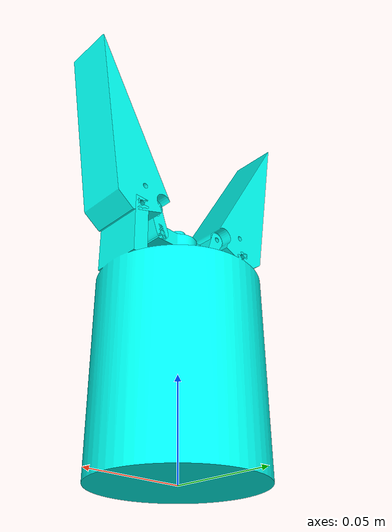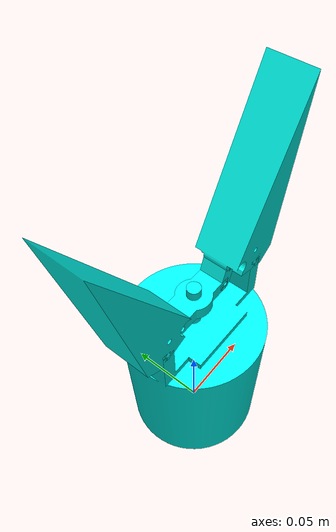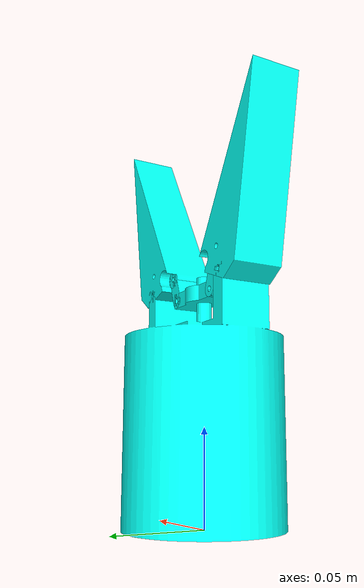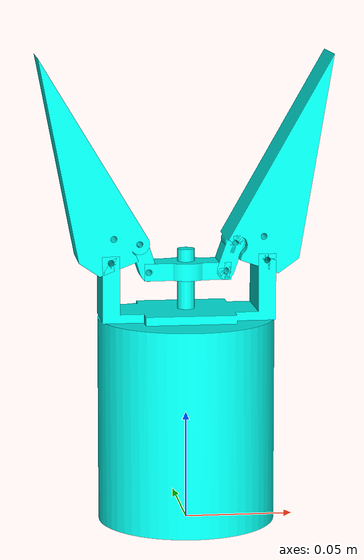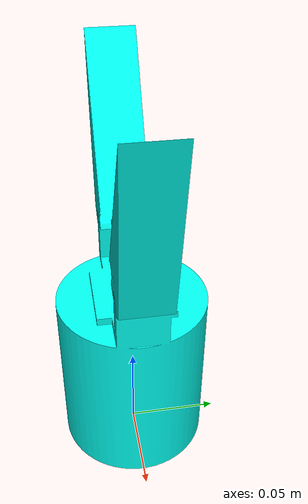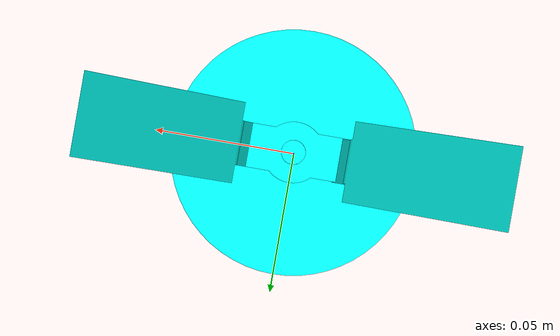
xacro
<?xml version="1.0" ?>
<robot name="urdfgripper" xmlns:xacro="http://www.ros.org/wiki/xacro">

<xacro:include filename="$(find urdfgripper_description)/urdf/materials.xacro" />
<xacro:include filename="$(find urdfgripper_description)/urdf/urdfgripper.trans" />
<xacro:include filename="$(find urdfgripper_description)/urdf/urdfgripper.gazebo" />

<link name="gripper_base_link">
  <inertial>
    <origin xyz="1.9099884677715165e-13 -8.588463814791657e-18 0.050480059207214864" rpy="0 0 0"/>
    <mass value="4.156467071923433"/>
    <inertia ixx="0.005332" iyy="0.005469" izz="0.003505" ixy="-0.0" iyz="-0.0" ixz="-0.0"/>
  </inertial>
  <visual>
    <origin xyz="0 0 0" rpy="0 0 0"/>
    <geometry>
      <mesh filename="package://urdfgripper_description/meshes/base_link.stl" scale="0.001 0.001 0.001"/>
    </geometry>
    <material name="cyan"/>
  </visual>
  <collision>
    <origin xyz="0 0 0" rpy="0 0 0"/>
    <geometry>
      <mesh filename="package://urdfgripper_description/meshes/base_link.stl" scale="0.001 0.001 0.001"/>
    </geometry>
  </collision>
</link>

<link name="clamp2_1">
  <inertial>
    <origin xyz="-0.0007710681342016981 0.01324999999999889 0.032208454343210485" rpy="0 0 0"/>
    <mass value="0.3695576413156298"/>
    <inertia ixx="0.000228" iyy="0.000227" izz="4.2e-05" ixy="0.0" iyz="0.0" ixz="2.1e-05"/>
  </inertial>
  <visual>
    <origin xyz="0.036 0.01325 -0.1238" rpy="0 0 0"/>
    <geometry>
      <mesh filename="package://urdfgripper_description/meshes/clamp2_1.stl" scale="0.001 0.001 0.001"/>
    </geometry>
    <material name="cyan"/>
  </visual>
  <collision>
    <origin xyz="0.036 0.01325 -0.1238" rpy="0 0 0"/>
    <geometry>
      <mesh filename="package://urdfgripper_description/meshes/clamp2_1.stl" scale="0.001 0.001 0.001"/>
    </geometry>
  </collision>
</link>

<link name="joint_gripper2_1">
  <inertial>
    <origin xyz="0.0014117786083714633 0.007249999999999621 -0.006855934747932696" rpy="0 0 0"/>
    <mass value="0.01686070551364095"/>
    <inertia ixx="1e-06" iyy="1e-06" izz="0.0" ixy="-0.0" iyz="-0.0" ixz="0.0"/>
  </inertial>
  <visual>
    <origin xyz="0.0175 0.0 -0.105" rpy="0 0 0"/>
    <geometry>
      <mesh filename="package://urdfgripper_description/meshes/joint_gripper2_1.stl" scale="0.001 0.001 0.001"/>
    </geometry>
    <material name="cyan"/>
  </visual>
  <collision>
    <origin xyz="0.0175 0.0 -0.105" rpy="0 0 0"/>
    <geometry>
      <mesh filename="package://urdfgripper_description/meshes/joint_gripper2_1.stl" scale="0.001 0.001 0.001"/>
    </geometry>
  </collision>
</link>

<link name="clamp1_1">
  <inertial>
    <origin xyz="0.0007710678210290922 0.013249999999998886 0.03220845433786543" rpy="0 0 0"/>
    <mass value="0.36955764131562985"/>
    <inertia ixx="0.000228" iyy="0.000227" izz="4.2e-05" ixy="-0.0" iyz="0.0" ixz="-2.1e-05"/>
  </inertial>
  <visual>
    <origin xyz="-0.036 0.01325 -0.1238" rpy="0 0 0"/>
    <geometry>
      <mesh filename="package://urdfgripper_description/meshes/clamp1_1.stl" scale="0.001 0.001 0.001"/>
    </geometry>
    <material name="cyan"/>
  </visual>
  <collision>
    <origin xyz="-0.036 0.01325 -0.1238" rpy="0 0 0"/>
    <geometry>
      <mesh filename="package://urdfgripper_description/meshes/clamp1_1.stl" scale="0.001 0.001 0.001"/>
    </geometry>
  </collision>
</link>

<link name="joint_gripper3_1">
  <inertial>
    <origin xyz="2.4639675104551738e-14 -2.3953259916310663e-16 -0.01399999999999997" rpy="0 0 0"/>
    <mass value="0.03492902737584383"/>
    <inertia ixx="1e-06" iyy="5e-06" izz="5e-06" ixy="-0.0" iyz="0.0" ixz="0.0"/>
  </inertial>
  <visual>
    <origin xyz="-0.0 -0.0 -0.1278" rpy="0 0 0"/>
    <geometry>
      <mesh filename="package://urdfgripper_description/meshes/joint_gripper3_1.stl" scale="0.001 0.001 0.001"/>
    </geometry>
    <material name="cyan"/>
  </visual>
  <collision>
    <origin xyz="-0.0 -0.0 -0.1278" rpy="0 0 0"/>
    <geometry>
      <mesh filename="package://urdfgripper_description/meshes/joint_gripper3_1.stl" scale="0.001 0.001 0.001"/>
    </geometry>
  </collision>
</link>

<link name="joint_gripper2_2">
  <inertial>
    <origin xyz="-0.0014122213916285369 0.007249999999999621 0.006856065252067292" rpy="0 0 0"/>
    <mass value="0.01686070551364095"/>
    <inertia ixx="1e-06" iyy="1e-06" izz="0.0" ixy="-0.0" iyz="-0.0" ixz="0.0"/>
  </inertial>
  <visual>
    <origin xyz="0.018 0.00725 -0.105" rpy="0 0 0"/>
    <geometry>
      <mesh filename="package://urdfgripper_description/meshes/joint_gripper2_1.stl" scale="0.001 0.001 0.001"/>
    </geometry>
    <material name="cyan"/>
  </visual>
  <collision>
    <origin xyz="0.018 0.00725 -0.105" rpy="0 0 0"/>
    <geometry>
      <mesh filename="package://urdfgripper_description/meshes/joint_gripper2_1.stl" scale="0.001 0.001 0.001"/>
    </geometry>
  </collision>
</link>

<joint name="Revolute_1" type="continuous">
  <origin xyz="-0.036 -0.01325 0.1238" rpy="0 -0.84 0"/>
  <parent link="gripper_base_link"/>
  <child link="clamp2_1"/>
  <axis xyz="0.0 -1.0 0.0"/>
  <mimic joint="Slider_5" multiplier="62.0" offset="0.0"/>
</joint>

<joint name="Revolute_2" type="continuous">
  <origin xyz="-0.018 -0.007 -0.023" rpy="0 -0.07 0"/>
  <parent link="joint_gripper3_1"/>
  <child link="joint_gripper2_2"/>
  <axis xyz="0.0 -1.0 -0.0"/>
  <mimic joint="Slider_5" multiplier="10.0" offset="0.0"/>
</joint>

<joint name="Revolute_3" type="continuous">
  <origin xyz="0.036 -0.01325 0.1238" rpy="0 1.74 0"/>
  <parent link="gripper_base_link"/>
  <child link="clamp1_1"/>
  <axis xyz="0.0 -1.0 0.0"/>
  <mimic joint="Slider_5" multiplier="-62.0" offset="0.0"/>
</joint>

<joint name="Revolute_4" type="continuous">
  <origin xyz="0.018 0.000 -0.023" rpy="0 0.58 0"/>
  <parent link="joint_gripper3_1"/>
  <child link="joint_gripper2_1"/>
  <axis xyz="0.0 -1.0 0.0"/>
  <mimic joint="Slider_5" multiplier="-10.0" offset="0.0"/>
</joint>

<joint name="Slider_5" type="prismatic">
  <origin xyz="0.0 0.0 0.1410" rpy="0 0 0"/>
  <parent link="gripper_base_link"/>
  <child link="joint_gripper3_1"/>
  <axis xyz="0.0 0.0 1.0"/>
  <limit upper="0.0" lower="-0.011" effort="100" velocity="100"/>
</joint>

</robot>

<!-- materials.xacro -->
<robot name="urdfgripper" xmlns:xacro="http://www.ros.org/wiki/xacro" >

<material name="cyan">
  <color rgba="0.000 1.000 0.950 1.000"/>
</material>

</robot>

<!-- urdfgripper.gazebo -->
<robot name="urdfgripper" xmlns:xacro="http://www.ros.org/wiki/xacro" >

<xacro:property name="body_color" value="Gazebo/Silver" />

<gazebo>
  <plugin name="control" filename="libgazebo_ros_control.so"/>
</gazebo>
<gazebo reference="base_link">
  <material>${body_color}</material>
  <mu1>0.2</mu1>
  <mu2>0.2</mu2>
  <selfCollide>true</selfCollide>
  <gravity>true</gravity>
</gazebo>

<gazebo reference="clamp2_1">
  <material>${body_color}</material>
  <mu1>0.2</mu1>
  <mu2>0.2</mu2>
  <selfCollide>true</selfCollide>
</gazebo>

<gazebo reference="joint_gripper2_1">
  <material>${body_color}</material>
  <mu1>0.2</mu1>
  <mu2>0.2</mu2>
  <selfCollide>true</selfCollide>
</gazebo>

<gazebo reference="clamp1_1">
  <material>${body_color}</material>
  <mu1>0.2</mu1>
  <mu2>0.2</mu2>
  <selfCollide>true</selfCollide>
</gazebo>

<gazebo reference="joint_gripper1_1">
  <material>${body_color}</material>
  <mu1>0.2</mu1>
  <mu2>0.2</mu2>
  <selfCollide>true</selfCollide>
</gazebo>

<gazebo reference="joint_gripper3_1">
  <material>${body_color}</material>
  <mu1>0.2</mu1>
  <mu2>0.2</mu2>
  <selfCollide>true</selfCollide>
</gazebo>

<gazebo reference="joint_gripper1_1">
  <material>${body_color}</material>
  <mu1>0.2</mu1>
  <mu2>0.2</mu2>
  <selfCollide>true</selfCollide>
</gazebo>

<gazebo reference="joint_gripper2_1">
  <material>${body_color}</material>
  <mu1>0.2</mu1>
  <mu2>0.2</mu2>
  <selfCollide>true</selfCollide>
</gazebo>

</robot>
